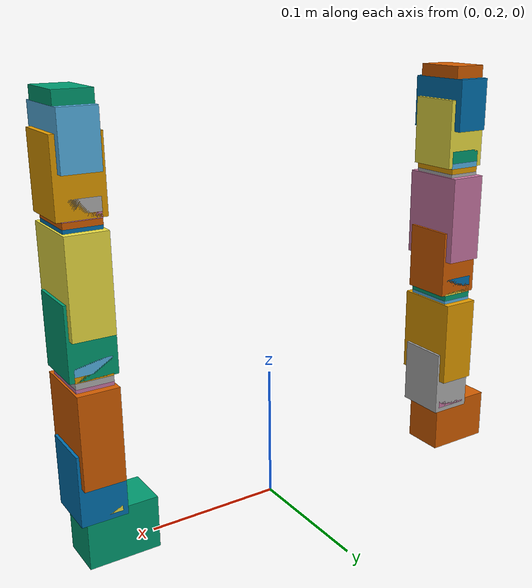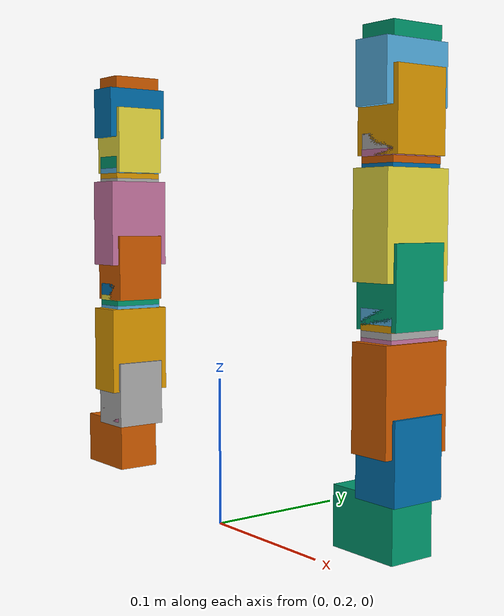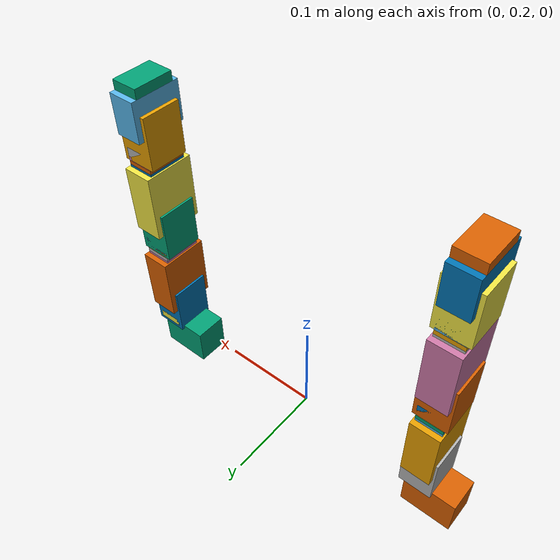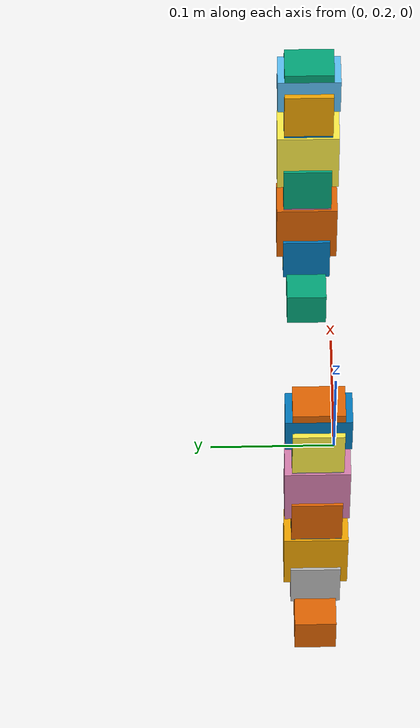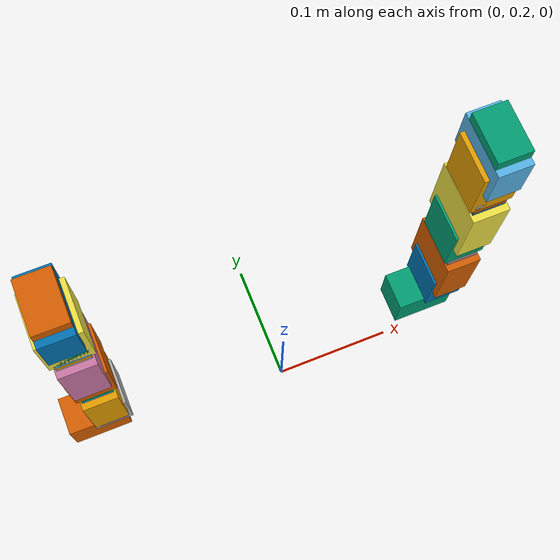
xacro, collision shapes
<?xml version="1.0"?>
<robot name="dual_arm" xmlns:xacro="http://ros.org/wiki/xacro">
<xacro:arg name="mode" default="mock"/>
<xacro:include filename="$(find dual_arm_description)/urdf/arm.xacro"/>
<link name="world"/>
<xacro:phantomx_pincher prefix="arm1_" ros2_control="false"/>
<xacro:phantomx_pincher prefix="arm2_" ros2_control="false"/>
<joint name="arm1_mount" type="fixed"><parent link="world"/><child link="arm1_base_link"/><origin xyz="0.15 0.22 0.03"/></joint>
<joint name="arm2_mount" type="fixed"><parent link="world"/><child link="arm2_base_link"/><origin xyz="-0.15 0.22 0.03"/></joint>
<ros2_control name="DualArmSystem" type="system"><hardware>
<xacro:if value="${'$(arg mode)' == 'sim'}"><plugin>gz_ros2_control/GazeboSimSystem</plugin></xacro:if>
<xacro:unless value="${'$(arg mode)' == 'sim'}"><plugin>mock_components/GenericSystem</plugin></xacro:unless>
</hardware><joint name="arm1_arm_shoulder_pan_joint"><command_interface name="position"/><state_interface name="position"><param name="initial_value">0.0</param></state_interface><state_interface name="velocity"/></joint><joint name="arm1_arm_shoulder_lift_joint"><command_interface name="position"/><state_interface name="position"><param name="initial_value">0.0</param></state_interface><state_interface name="velocity"/></joint><joint name="arm1_arm_elbow_flex_joint"><command_interface name="position"/><state_interface name="position"><param name="initial_value">0.0</param></state_interface><state_interface name="velocity"/></joint><joint name="arm1_arm_wrist_flex_joint"><command_interface name="position"/><state_interface name="position"><param name="initial_value">0.0</param></state_interface><state_interface name="velocity"/></joint><joint name="arm2_arm_shoulder_pan_joint"><command_interface name="position"/><state_interface name="position"><param name="initial_value">0.0</param></state_interface><state_interface name="velocity"/></joint><joint name="arm2_arm_shoulder_lift_joint"><command_interface name="position"/><state_interface name="position"><param name="initial_value">0.0</param></state_interface><state_interface name="velocity"/></joint><joint name="arm2_arm_elbow_flex_joint"><command_interface name="position"/><state_interface name="position"><param name="initial_value">0.0</param></state_interface><state_interface name="velocity"/></joint><joint name="arm2_arm_wrist_flex_joint"><command_interface name="position"/><state_interface name="position"><param name="initial_value">0.0</param></state_interface><state_interface name="velocity"/></joint></ros2_control>
<xacro:if value="${'$(arg mode)' == 'sim'}"><gazebo><plugin filename="libgz_ros2_control-system.so" name="gz_ros2_control::GazeboSimROS2ControlPlugin"><parameters>$(find dual_arm_controllers)/config/controllers.yaml</parameters></plugin></gazebo></xacro:if>
</robot>

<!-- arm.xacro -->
<!-- Xacro for PhantomX Pincher Robot Arm arm -->
<robot xmlns:xacro="http://ros.org/wiki/xacro">

  <!-- Imported elements -->
  <xacro:include filename="$(find dual_arm_description)/urdf/phantomx_pincher_hardware.xacro"/>

  <!-- Properties -->
  <xacro:property name="ax12_height" value="0.032"/>
  <xacro:property name="ax12_width" value="0.038"/>
  <xacro:property name="f2_height" value="0.0265"/>
  <xacro:property name="f4_height" value="0.0525"/>
  <xacro:property name="f10_height" value="0.004"/>
  <xacro:property name="finger_centre_offset_x" value="0.019"/>
  <xacro:property name="finger_centre_offset_y" value="0.0115"/>

  <xacro:property name="joints_velocity_limit" value="${pi/2}"/>
  <xacro:property name="pan_joint_lower_limit" value="${-150*pi/180}"/>
  <xacro:property name="pan_joint_upper_limit" value="${150*pi/180}"/>
  <xacro:property name="shoulder_joint_lower_limit" value="${-120*pi/180}"/>
  <xacro:property name="shoulder_joint_upper_limit" value="${120*pi/180}"/>
  <xacro:property name="elbow_joint_lower_limit" value="${-139*pi/180}"/>
  <xacro:property name="elbow_joint_upper_limit" value="${139*pi/180}"/>
  <xacro:property name="wrist_joint_lower_limit" value="${-98*pi/180}"/>
  <xacro:property name="wrist_joint_upper_limit" value="${103*pi/180}"/>

  <!-- Macro -->
  <xacro:macro name="phantomx_pincher" params="
    prefix
    base_link:=base_link
    collision:=true
    ros2_control:=true
    ros2_control_plugin:=fake
    ros2_control_command_interface:=position
    mimic_finger_joints:=false
    gazebo_preserve_fixed_joint:=false
  ">
    <!-- Base link of the arm, which can be used to attach it to the rest of the world -->
    <link name="${prefix}${base_link}"/>

    <!-- Shoulder Pan -->
    <xacro:dynamixel_ax12_fixed prefix="${prefix}" parent="${base_link}" name="arm_shoulder_pan_servo" joint_origin_xyz="0.0 0.0 0.0" joint_origin_rpy="${pi/2} 0.0 ${pi/2}" collision="${collision}" gazebo_preserve_fixed_joint="${gazebo_preserve_fixed_joint}"/>
    <xacro:bioloid_f3_revolute prefix="${prefix}" parent="arm_shoulder_pan_servo_link" name="arm_shoulder_pan" joint_velocity_limit="${joints_velocity_limit}" joint_lower_limit="${pan_joint_lower_limit}" joint_upper_limit="${pan_joint_upper_limit}" joint_origin_xyz="0 ${ax12_width/2} 0.0" joint_origin_rpy="${-pi/2} ${pi/2} ${pi}" collision="${collision}" gazebo_preserve_fixed_joint="${gazebo_preserve_fixed_joint}"/>

    <!-- Shoulder Lift -->
    <xacro:dynamixel_ax12_fixed prefix="${prefix}" parent="arm_shoulder_pan_link" name="arm_shoulder_lift_servo" joint_origin_xyz="0.0 0.0 ${-ax12_height-f10_height+0.001}" joint_origin_rpy="0.0 ${pi} 0.0" collision="${collision}" gazebo_preserve_fixed_joint="${gazebo_preserve_fixed_joint}"/>
    <xacro:bioloid_f4_revolute prefix="${prefix}" parent="arm_shoulder_lift_servo_link" name="arm_shoulder_lift" joint_velocity_limit="${joints_velocity_limit}" joint_lower_limit="${shoulder_joint_lower_limit}" joint_upper_limit="${shoulder_joint_upper_limit}" joint_origin_xyz="0.0 0.0 0.0" joint_origin_rpy="0.0 0.0 0.0" collision="${collision}" gazebo_preserve_fixed_joint="${gazebo_preserve_fixed_joint}"/>
    <xacro:bioloid_f10_fixed prefix="${prefix}" parent="arm_shoulder_lift_link" name="arm_shoulder_F10_0" joint_origin_xyz="0.0 0.0 ${f4_height+f10_height/2}" joint_origin_rpy="0.0 0.0 0.0" collision="${collision}" gazebo_preserve_fixed_joint="${gazebo_preserve_fixed_joint}"/>
    <xacro:bioloid_f10_fixed prefix="${prefix}" parent="arm_shoulder_F10_0_link" name="arm_shoulder_F10_1" joint_origin_xyz="0.0 0.0 ${f10_height}" joint_origin_rpy="0.0 0.0 0.0" collision="${collision}" gazebo_preserve_fixed_joint="${gazebo_preserve_fixed_joint}"/>
    <xacro:bioloid_f10_fixed prefix="${prefix}" parent="arm_shoulder_F10_1_link" name="arm_shoulder_F10_2" joint_origin_xyz="0.0 0.0 ${f10_height}" joint_origin_rpy="0.0 0.0 0.0" collision="${collision}" gazebo_preserve_fixed_joint="${gazebo_preserve_fixed_joint}"/>
    <xacro:bioloid_f3_fixed prefix="${prefix}" parent="arm_shoulder_F10_2_link" name="arm_shoulder_F3_0" joint_origin_xyz="0.0 0.0 ${f10_height/2}" joint_origin_rpy="0.0 ${pi} 0.0" collision="${collision}" gazebo_preserve_fixed_joint="${gazebo_preserve_fixed_joint}"/>

    <!-- Elbow -->
    <xacro:dynamixel_ax12_fixed prefix="${prefix}" parent="arm_shoulder_F3_0_link" name="arm_elbow_flex_servo" joint_origin_xyz="0.0 0.0 ${-ax12_height-f10_height+0.001}" joint_origin_rpy="0.0 ${pi} 0.0" collision="${collision}" gazebo_preserve_fixed_joint="${gazebo_preserve_fixed_joint}"/>
    <xacro:bioloid_f4_revolute prefix="${prefix}" parent="arm_elbow_flex_servo_link" name="arm_elbow_flex" joint_velocity_limit="${joints_velocity_limit}" joint_lower_limit="${elbow_joint_lower_limit}" joint_upper_limit="${elbow_joint_upper_limit}" joint_origin_xyz="0.0 0.0 0.0" joint_origin_rpy="0.0 0.0 0.0" collision="${collision}" gazebo_preserve_fixed_joint="${gazebo_preserve_fixed_joint}"/>
    <xacro:bioloid_f10_fixed prefix="${prefix}" parent="arm_elbow_flex_link" name="arm_elbow_F10_0" joint_origin_xyz="0.0 0.0 ${f4_height+f10_height/2}" joint_origin_rpy="0.0 0.0 0.0" collision="${collision}" gazebo_preserve_fixed_joint="${gazebo_preserve_fixed_joint}"/>
    <xacro:bioloid_f10_fixed prefix="${prefix}" parent="arm_elbow_F10_0_link" name="arm_elbow_F10_1" joint_origin_xyz="0.0 0.0 ${f10_height}" joint_origin_rpy="0.0 0.0 0.0" collision="${collision}" gazebo_preserve_fixed_joint="${gazebo_preserve_fixed_joint}"/>
    <xacro:bioloid_f10_fixed prefix="${prefix}" parent="arm_elbow_F10_1_link" name="arm_elbow_F10_2" joint_origin_xyz="0.0 0.0 ${f10_height}" joint_origin_rpy="0.0 0.0 0.0" collision="${collision}" gazebo_preserve_fixed_joint="${gazebo_preserve_fixed_joint}"/>
    <xacro:bioloid_f3_fixed prefix="${prefix}" parent="arm_elbow_F10_2_link" name="arm_elbow_F3_0" joint_origin_xyz="0.0 0.0 ${f10_height/2}" joint_origin_rpy="0.0 ${pi} 0.0" collision="${collision}" gazebo_preserve_fixed_joint="${gazebo_preserve_fixed_joint}"/>

    <!-- Wrist -->
    <xacro:dynamixel_ax12_fixed prefix="${prefix}" parent="arm_elbow_F3_0_link" name="arm_wrist_flex_servo" joint_origin_xyz="0.0 0.0 ${-ax12_height-f10_height+0.001}" joint_origin_rpy="0.0 ${pi} 0.0" collision="${collision}" gazebo_preserve_fixed_joint="${gazebo_preserve_fixed_joint}"/>
    <xacro:bioloid_f2_revolute prefix="${prefix}" parent="arm_wrist_flex_servo_link" name="arm_wrist_flex" joint_velocity_limit="${joints_velocity_limit}" joint_lower_limit="${wrist_joint_lower_limit}" joint_upper_limit="${wrist_joint_upper_limit}" joint_origin_xyz="0.0 0.0 0.0" joint_origin_rpy="0.0 0.0 0.0" collision="${collision}" gazebo_preserve_fixed_joint="${gazebo_preserve_fixed_joint}"/>
    <xacro:bioloid_f3_fixed prefix="${prefix}" parent="arm_wrist_flex_link" name="arm_wrist_F3_0" joint_origin_xyz="0.0 0.0 ${f2_height}" joint_origin_rpy="0 ${pi} ${-pi}" collision="${collision}" gazebo_preserve_fixed_joint="${gazebo_preserve_fixed_joint}"/>

    <!-- Reference suction geometry. CAD transform validation required. -->
    <link name="${prefix}tcp">
      <visual><origin xyz="0 0 -0.01"/><geometry><cylinder radius="0.009" length="0.02"/></geometry><material name="cup"><color rgba="0.6 0.7 0.8 0.7"/></material></visual>
      <collision><origin xyz="0 0 -0.01"/><geometry><cylinder radius="0.009" length="0.02"/></geometry></collision>
      <inertial><origin xyz="0 0 -0.01"/><mass value="0.01"/><inertia ixx="0.00000054" iyy="0.00000054" izz="0.0000004" ixy="0" ixz="0" iyz="0"/></inertial>
    </link>
    <joint name="${prefix}tcp_fixed" type="fixed"><parent link="${prefix}arm_wrist_F3_0_link"/><child link="${prefix}tcp"/><origin xyz="0 0 0.02"/></joint>
  </xacro:macro>
</robot>

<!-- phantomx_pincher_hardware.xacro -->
<!-- Macro for (repeated) components of PhantomX Pincher Robot Arm -->
<robot xmlns:xacro="http://ros.org/wiki/xacro">

  <!-- Imported elements -->
  <xacro:include filename="$(find dual_arm_description)/urdf/phantomx_pincher_utils.xacro"/>

  <!-- Macro -->
  <xacro:property name="dynamixel_ax12_fixed_joint_type" value="fixed"/>
  <xacro:property name="dynamixel_ax12_fixed_link_mu" value="1.0"/>
  <xacro:property name="dynamixel_ax12_fixed_link_mesh" value="ax12"/>
  <xacro:property name="dynamixel_ax12_fixed_link_collision_type" value="box"/>
  <xacro:property name="dynamixel_ax12_fixed_link_collision_box_size" value="0.032 0.038 0.05"/>
  <xacro:property name="dynamixel_ax12_fixed_link_mesh_offset_collision_xyz" value="0.0 0.0 -0.0135"/>
  <xacro:macro name="dynamixel_ax12_fixed" params="
    prefix
    name
    parent
    joint_origin_xyz
    joint_origin_rpy
    collision:=true
    gazebo_preserve_fixed_joint:=false
  ">
    <!-- Note: `gazebo_preserve_fixed_joint` cannot be enabled for dynamixel_ax12_fixed because the SDF conversion would fail -->
    <xacro:phantomx_pincher_joint parent="${prefix}${parent}" child="${prefix}${name}_link" joint_name="${prefix}${name}_joint" joint_type="${dynamixel_ax12_fixed_joint_type}" joint_origin_xyz="${joint_origin_xyz}" joint_origin_rpy="${joint_origin_rpy}" gazebo_preserve_fixed_joint="false"/>
    <xacro:phantomx_pincher_link link_name="${prefix}${name}_link" mesh="${dynamixel_ax12_fixed_link_mesh}" collision="${collision}" collision_type="${dynamixel_ax12_fixed_link_collision_type}" collision_box_size="${dynamixel_ax12_fixed_link_collision_box_size}" mesh_offset_collision_xyz="${dynamixel_ax12_fixed_link_mesh_offset_collision_xyz}" mu="${dynamixel_ax12_fixed_link_mu}"/>
  </xacro:macro>

  <!-- Macro -->
  <xacro:property name="bioloid_f3_fixed_joint_type" value="fixed"/>
  <xacro:property name="bioloid_f3_fixed_link_mu" value="1.0"/>
  <xacro:property name="bioloid_f3_fixed_link_mesh" value="f3"/>
  <xacro:property name="bioloid_f3_fixed_link_collision_type" value="box"/>
  <xacro:property name="bioloid_f3_fixed_link_collision_box_size" value="0.025 0.038 0.009"/>
  <xacro:property name="bioloid_f3_fixed_link_mesh_offset_collision_xyz" value="0.0 0.0 -0.0045"/>
  <xacro:macro name="bioloid_f3_fixed" params="
    prefix
    name
    parent
    joint_origin_xyz
    joint_origin_rpy
    collision:=true
    gazebo_preserve_fixed_joint:=false
  ">
    <xacro:phantomx_pincher_joint parent="${prefix}${parent}" child="${prefix}${name}_link" joint_name="${prefix}${name}_joint" joint_type="${bioloid_f3_fixed_joint_type}" joint_origin_xyz="${joint_origin_xyz}" joint_origin_rpy="${joint_origin_rpy}" gazebo_preserve_fixed_joint="${gazebo_preserve_fixed_joint}"/>
    <xacro:phantomx_pincher_link link_name="${prefix}${name}_link" mesh="${bioloid_f3_fixed_link_mesh}" collision="${collision}" collision_type="${bioloid_f3_fixed_link_collision_type}" collision_box_size="${bioloid_f3_fixed_link_collision_box_size}" mesh_offset_collision_xyz="${bioloid_f3_fixed_link_mesh_offset_collision_xyz}" mu="${bioloid_f3_fixed_link_mu}"/>
  </xacro:macro>

  <!-- Macro -->
  <xacro:property name="bioloid_f10_fixed_joint_type" value="fixed"/>
  <xacro:property name="bioloid_f10_fixed_link_mu" value="1.0"/>
  <xacro:property name="bioloid_f10_fixed_link_mesh" value="f10"/>
  <xacro:property name="bioloid_f10_fixed_link_collision_type" value="box"/>
  <xacro:property name="bioloid_f10_fixed_link_collision_box_size" value="0.025 0.038 0.004"/>
  <xacro:property name="bioloid_f10_fixed_link_mesh_offset_collision_xyz" value="0.0 0.0 0.0"/>
  <xacro:macro name="bioloid_f10_fixed" params="
    prefix
    name
    parent
    joint_origin_xyz
    joint_origin_rpy
    collision:=true
    gazebo_preserve_fixed_joint:=false
  ">
    <xacro:phantomx_pincher_joint parent="${prefix}${parent}" child="${prefix}${name}_link" joint_name="${prefix}${name}_joint" joint_type="${bioloid_f10_fixed_joint_type}" joint_origin_xyz="${joint_origin_xyz}" joint_origin_rpy="${joint_origin_rpy}" gazebo_preserve_fixed_joint="${gazebo_preserve_fixed_joint}"/>
    <xacro:phantomx_pincher_link link_name="${prefix}${name}_link" mesh="${bioloid_f10_fixed_link_mesh}" collision="${collision}" collision_type="${bioloid_f10_fixed_link_collision_type}" collision_box_size="${bioloid_f10_fixed_link_collision_box_size}" mesh_offset_collision_xyz="${bioloid_f10_fixed_link_mesh_offset_collision_xyz}" mu="${bioloid_f10_fixed_link_mu}"/>
  </xacro:macro>

  <!-- Macro -->
  <xacro:property name="bioloid_f2_revolute_joint_type" value="revolute"/>
  <xacro:property name="bioloid_f2_revolute_joint_axis_xyz" value="0.0 1.0 0.0"/>
  <xacro:property name="bioloid_f2_revolute_joint_torque_limit" value="30"/>
  <xacro:property name="bioloid_f2_revolute_joint_damping" value="1.4"/>
  <xacro:property name="bioloid_f2_revolute_joint_friction" value="0.02"/>
  <xacro:property name="bioloid_f2_revolute_link_mu" value="1.0"/>
  <xacro:property name="bioloid_f2_revolute_link_mesh" value="f2"/>
  <xacro:property name="bioloid_f2_revolute_link_collision_type" value="box"/>
  <xacro:property name="bioloid_f2_revolute_link_collision_box_size" value="0.025 0.0485 0.0375"/>
  <xacro:property name="bioloid_f2_revolute_link_mesh_offset_collision_xyz" value="0.0 0.0 0.00775"/>
  <xacro:macro name="bioloid_f2_revolute" params="
    prefix
    name
    parent
    joint_origin_xyz
    joint_origin_rpy
    joint_lower_limit
    joint_upper_limit
    joint_velocity_limit
    collision:=true
    gazebo_preserve_fixed_joint:=false
  ">
    <xacro:phantomx_pincher_joint parent="${prefix}${parent}" child="${prefix}${name}_link" joint_name="${prefix}${name}_joint" joint_type="${bioloid_f2_revolute_joint_type}" joint_origin_xyz="${joint_origin_xyz}" joint_origin_rpy="${joint_origin_rpy}" joint_axis_xyz="${bioloid_f2_revolute_joint_axis_xyz}" joint_lower_limit="${joint_lower_limit}" joint_upper_limit="${joint_upper_limit}" joint_velocity_limit="${joint_velocity_limit}" joint_torque_limit="${bioloid_f2_revolute_joint_torque_limit}" joint_damping="${bioloid_f2_revolute_joint_damping}" joint_friction="${bioloid_f2_revolute_joint_friction}" gazebo_preserve_fixed_joint="${gazebo_preserve_fixed_joint}"/>
    <xacro:phantomx_pincher_link link_name="${prefix}${name}_link" mesh="${bioloid_f2_revolute_link_mesh}" collision="${collision}" collision_type="${bioloid_f2_revolute_link_collision_type}" collision_box_size="${bioloid_f2_revolute_link_collision_box_size}" mesh_offset_collision_xyz="${bioloid_f2_revolute_link_mesh_offset_collision_xyz}" mu="${bioloid_f2_revolute_link_mu}"/>
  </xacro:macro>

  <!-- Macro -->
  <xacro:property name="bioloid_f3_revolute_joint_type" value="revolute"/>
  <xacro:property name="bioloid_f3_revolute_joint_axis_xyz" value="0.0 0.0 -1.0"/>
  <xacro:property name="bioloid_f3_revolute_joint_torque_limit" value="30"/>
  <xacro:property name="bioloid_f3_revolute_joint_damping" value="1.4"/>
  <xacro:property name="bioloid_f3_revolute_joint_friction" value="0.02"/>
  <xacro:property name="bioloid_f3_revolute_link_mu" value="1.0"/>
  <xacro:property name="bioloid_f3_revolute_link_mesh" value="f3"/>
  <xacro:property name="bioloid_f3_revolute_link_collision_type" value="box"/>
  <xacro:property name="bioloid_f3_revolute_link_collision_box_size" value="0.025 0.038 0.009"/>
  <xacro:property name="bioloid_f3_revolute_link_mesh_offset_collision_xyz" value="0.0 0.0 -0.0045"/>
  <xacro:macro name="bioloid_f3_revolute" params="
    prefix
    name
    parent
    joint_origin_xyz
    joint_origin_rpy
    joint_lower_limit
    joint_upper_limit
    joint_velocity_limit
    collision:=true
    gazebo_preserve_fixed_joint:=false
  ">
    <xacro:phantomx_pincher_joint parent="${prefix}${parent}" child="${prefix}${name}_link" joint_name="${prefix}${name}_joint" joint_type="${bioloid_f3_revolute_joint_type}" joint_origin_xyz="${joint_origin_xyz}" joint_origin_rpy="${joint_origin_rpy}" joint_axis_xyz="${bioloid_f3_revolute_joint_axis_xyz}" joint_lower_limit="${joint_lower_limit}" joint_upper_limit="${joint_upper_limit}" joint_velocity_limit="${joint_velocity_limit}" joint_torque_limit="${bioloid_f3_revolute_joint_torque_limit}" joint_damping="${bioloid_f3_revolute_joint_damping}" joint_friction="${bioloid_f3_revolute_joint_friction}" gazebo_preserve_fixed_joint="${gazebo_preserve_fixed_joint}"/>
    <xacro:phantomx_pincher_link link_name="${prefix}${name}_link" mesh="${bioloid_f3_revolute_link_mesh}" collision="${collision}" collision_type="${bioloid_f3_revolute_link_collision_type}" collision_box_size="${bioloid_f3_revolute_link_collision_box_size}" mesh_offset_collision_xyz="${bioloid_f3_revolute_link_mesh_offset_collision_xyz}" mu="${bioloid_f3_revolute_link_mu}"/>
  </xacro:macro>

  <!-- Macro -->
  <xacro:property name="bioloid_f4_revolute_joint_type" value="revolute"/>
  <xacro:property name="bioloid_f4_revolute_joint_axis_xyz" value="0.0 1.0 0.0"/>
  <xacro:property name="bioloid_f4_revolute_joint_torque_limit" value="30"/>
  <xacro:property name="bioloid_f4_revolute_joint_damping" value="1.4"/>
  <xacro:property name="bioloid_f4_revolute_joint_friction" value="0.02"/>
  <xacro:property name="bioloid_f4_revolute_link_mu" value="1.0"/>
  <xacro:property name="bioloid_f4_revolute_link_mesh" value="f4"/>
  <xacro:property name="bioloid_f4_revolute_link_collision_type" value="box"/>
  <xacro:property name="bioloid_f4_revolute_link_collision_box_size" value="0.028 0.0485 0.065"/>
  <xacro:property name="bioloid_f4_revolute_link_mesh_offset_collision_xyz" value="0.0 0.0 0.0215"/>
  <xacro:macro name="bioloid_f4_revolute" params="
    prefix
    name
    parent
    joint_origin_xyz
    joint_origin_rpy
    joint_lower_limit
    joint_upper_limit
    joint_velocity_limit
    collision:=true
    gazebo_preserve_fixed_joint:=false
  ">
    <xacro:phantomx_pincher_joint parent="${prefix}${parent}" child="${prefix}${name}_link" joint_name="${prefix}${name}_joint" joint_type="${bioloid_f4_revolute_joint_type}" joint_origin_xyz="${joint_origin_xyz}" joint_origin_rpy="${joint_origin_rpy}" joint_axis_xyz="${bioloid_f4_revolute_joint_axis_xyz}" joint_lower_limit="${joint_lower_limit}" joint_upper_limit="${joint_upper_limit}" joint_velocity_limit="${joint_velocity_limit}" joint_torque_limit="${bioloid_f4_revolute_joint_torque_limit}" joint_damping="${bioloid_f4_revolute_joint_damping}" joint_friction="${bioloid_f4_revolute_joint_friction}" gazebo_preserve_fixed_joint="${gazebo_preserve_fixed_joint}"/>
    <xacro:phantomx_pincher_link link_name="${prefix}${name}_link" mesh="${bioloid_f4_revolute_link_mesh}" collision="${collision}" collision_type="${bioloid_f4_revolute_link_collision_type}" collision_box_size="${bioloid_f4_revolute_link_collision_box_size}" mesh_offset_collision_xyz="${bioloid_f4_revolute_link_mesh_offset_collision_xyz}" mu="${bioloid_f4_revolute_link_mu}"/>
  </xacro:macro>

  <!-- Macro -->
  <xacro:property name="gripper_finger_base_joint_type" value="fixed"/>
  <xacro:property name="gripper_finger_base_link_mu" value="1.0"/>
  <xacro:property name="gripper_finger_base_link_mesh" value="gripper_base"/>
  <xacro:property name="gripper_finger_base_link_collision_type" value="box"/>
  <xacro:property name="gripper_finger_base_link_collision_box_size" value="0.002 0.075 0.040"/>
  <xacro:property name="gripper_finger_base_link_mesh_offset_collision_xyz" value="0.0 0.0 0.0"/>
  <xacro:macro name="gripper_finger_base" params="
    prefix
    name
    parent
    joint_origin_xyz
    joint_origin_rpy
    collision:=true
    gazebo_preserve_fixed_joint:=false
  ">
    <xacro:phantomx_pincher_joint parent="${prefix}${parent}" child="${prefix}${name}_link" joint_name="${prefix}${name}_joint" joint_type="${gripper_finger_base_joint_type}" joint_origin_xyz="${joint_origin_xyz}" joint_origin_rpy="${joint_origin_rpy}" gazebo_preserve_fixed_joint="${gazebo_preserve_fixed_joint}"/>
    <xacro:phantomx_pincher_link link_name="${prefix}${name}_link" mesh="${gripper_finger_base_link_mesh}" collision="${collision}" collision_type="${gripper_finger_base_link_collision_type}" collision_box_size="${gripper_finger_base_link_collision_box_size}" mesh_offset_collision_xyz="${gripper_finger_base_link_mesh_offset_collision_xyz}" mu="${gripper_finger_base_link_mu}"/>
  </xacro:macro>

  <!-- Macro -->
  <xacro:property name="pincher_finger_joint_type" value="prismatic"/>
  <xacro:property name="pincher_finger_joint_axis_xyz" value="1.0 0.0 0.0"/>
  <xacro:property name="pincher_finger_joint_lower_limit" value="0.001"/>
  <xacro:property name="pincher_finger_joint_upper_limit" value="0.0158"/>
  <xacro:property name="pincher_finger_joint_velocity_limit" value="0.01"/>
  <xacro:property name="pincher_finger_joint_torque_limit" value="30"/>
  <xacro:property name="pincher_finger_joint_damping" value="1.8"/>
  <xacro:property name="pincher_finger_joint_friction" value="0.06"/>
  <xacro:property name="pincher_finger_link_mu" value="1.0"/>
  <xacro:property name="pincher_finger_link_mesh" value="finger"/>
  <xacro:property name="pincher_finger_link_collision_type" value="mesh"/>
  <xacro:macro name="pincher_finger" params="
    prefix
    name
    parent
    joint_origin_xyz
    joint_origin_rpy
    collision:=true
    mimic_joint:=none
    gazebo_preserve_fixed_joint:=false
  ">
    <xacro:phantomx_pincher_joint parent="${prefix}${parent}" child="${prefix}${name}_link" joint_name="${prefix}${name}_joint" joint_type="${pincher_finger_joint_type}" joint_origin_xyz="${joint_origin_xyz}" joint_origin_rpy="${joint_origin_rpy}" joint_axis_xyz="${pincher_finger_joint_axis_xyz}" joint_lower_limit="${pincher_finger_joint_lower_limit}" joint_upper_limit="${pincher_finger_joint_upper_limit}" joint_velocity_limit="${pincher_finger_joint_velocity_limit}" joint_torque_limit="${pincher_finger_joint_torque_limit}" joint_damping="${pincher_finger_joint_damping}" joint_friction="${pincher_finger_joint_friction}" gazebo_preserve_fixed_joint="${gazebo_preserve_fixed_joint}" mimic_joint="${mimic_joint}"/>
    <xacro:phantomx_pincher_link link_name="${prefix}${name}_link" mesh="${pincher_finger_link_mesh}" collision="${collision}" collision_type="${pincher_finger_link_collision_type}" mu="${pincher_finger_link_mu}"/>
  </xacro:macro>

  <!-- Macro -->
  <xacro:property name="fake_active_gripper_joint_type" value="revolute"/>
  <xacro:property name="fake_active_gripper_joint_axis_xyz" value="1.0 0.0 0.0"/>
  <xacro:property name="fake_active_gripper_joint_torque_limit" value="30"/>
  <xacro:property name="fake_active_gripper_joint_velocity_limit" value="${3*pi/4}"/>
  <xacro:property name="fake_active_gripper_joint_lower_limit" value="${-149*pi/180}"/>
  <xacro:property name="fake_active_gripper_joint_upper_limit" value="0.0"/>
  <xacro:macro name="fake_active_gripper_joint" params="
    prefix
    name
    parent
    joint_origin_xyz:=${default_vector3}
    joint_origin_rpy:=${default_vector3}
    joint_axis_xyz:=${fake_active_gripper_joint_axis_xyz}
    joint_torque_limit:=${fake_active_gripper_joint_torque_limit}
    joint_velocity_limit:=${fake_active_gripper_joint_velocity_limit}
    joint_lower_limit:=${fake_active_gripper_joint_lower_limit}
    joint_upper_limit:=${fake_active_gripper_joint_upper_limit}
    gazebo_preserve_fixed_joint:=false
  ">
    <xacro:phantomx_pincher_dummy_link link_name="${prefix}${name}_link" gazebo_preserve_fixed_joint="${gazebo_preserve_fixed_joint}"/>
    <joint name="${prefix}${name}_joint" type="${fake_active_gripper_joint_type}">
    <origin xyz="${joint_origin_xyz}" rpy="${joint_origin_rpy}"/>
    <axis xyz="${joint_axis_xyz}"/>
    <limit effort="${joint_torque_limit}" velocity="${joint_velocity_limit}" lower="${joint_lower_limit}" upper="${joint_upper_limit}"/>
    <parent link="${prefix}${parent}"/>
    <child link="${prefix}${name}_link"/>
    </joint>
  </xacro:macro>

</robot>

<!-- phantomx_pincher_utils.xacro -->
<!-- Macros for general boilerplate -->
<robot xmlns:xacro="http://ros.org/wiki/xacro">

  <!-- Imported elements -->
  <xacro:include filename="$(find dual_arm_description)/urdf/phantomx_pincher_inertial.xacro"/>

  <!-- Properties -->
  <xacro:property name="default_string" value=""/>
  <xacro:property name="default_vector3" value="0.0 0.0 0.0"/>

  <!-- Macro -->
  <xacro:macro name="phantomx_pincher_link" params="
    link_name
    mesh
    visual:=true
    collision:=true
    collision_type:=mesh
    collision_box_size:=${default_vector3}
    mesh_offset_visual_xyz:=${default_vector3}
    mesh_offset_visual_rpy:=${default_vector3}
    mesh_offset_collision_xyz:=${default_vector3}
    mesh_offset_collision_rpy:=${default_vector3}
    mesh_offset_inertial_rpy:=${default_vector3}
    mu:=1.0
  ">
    <link name="${link_name}">
      <visual>
        <origin xyz="${mesh_offset_visual_xyz}" rpy="${mesh_offset_visual_rpy}"/>
        <geometry>
          <mesh filename="package://dual_arm_description/meshes/visual/${mesh}.dae"/>
        </geometry>
      </visual>

      <xacro:if value="${collision}">
        <collision>
          <origin xyz="${mesh_offset_collision_xyz}" rpy="${mesh_offset_collision_rpy}"/>
          <geometry>
            <xacro:if value="${collision_type == 'mesh'}">
              <mesh filename="package://dual_arm_description/meshes/collision/${mesh}.stl"/>
            </xacro:if>
            <xacro:if value="${collision_type == 'box'}">
              <box size="${collision_box_size}"/>
            </xacro:if>
          </geometry>
        </collision>
      </xacro:if>

      <xacro:phantomx_pincher_inertial mesh="${mesh}" mesh_offset_rpy="${mesh_offset_inertial_rpy}"/>
    </link>

    <gazebo reference="${link_name}">
      <mu1 value="${mu}"/>
      <mu2 value="${mu}"/>
    </gazebo>
  </xacro:macro>

  <!-- Macro -->
  <xacro:macro name="phantomx_pincher_joint" params="
    parent
    child
    joint_name
    joint_type
    joint_origin_xyz
    joint_origin_rpy
    joint_axis_xyz:=unset
    joint_lower_limit:=unset
    joint_upper_limit:=unset
    joint_velocity_limit:=unset
    joint_torque_limit:=unset
    joint_damping:=0.0
    joint_friction:=0.0
    mimic_joint:=none
    safety_limits:=false
    safety_position_margin:=0.0
    safety_k_position:=0.0
    safety_k_velocity:=0.0
    gazebo_spring_stiffness:=0.0
    gazebo_spring_reference:=0.0
    gazebo_preserve_fixed_joint:=false
  ">
    <!-- Make sure limits are set for non-fixed joints -->
    <xacro:unless value="${joint_type == 'fixed'}">
      <xacro:if value="${joint_axis_xyz == 'unset'}">
        <xacro:ERROR_joint_axis_xyz_undefined/>
      </xacro:if>
      <xacro:if value="${joint_lower_limit == 'unset'}">
        <xacro:ERROR_joint_lower_limit_undefined/>
      </xacro:if>
      <xacro:if value="${joint_upper_limit == 'unset'}">
        <xacro:ERROR_joint_upper_limit_undefined/>
      </xacro:if>
      <xacro:if value="${joint_velocity_limit == 'unset'}">
        <xacro:ERROR_joint_velocity_limit_undefined/>
      </xacro:if>
      <xacro:if value="${joint_torque_limit == 'unset'}">
        <xacro:ERROR_joint_torque_limit_undefined/>
      </xacro:if>
    </xacro:unless>

    <joint name="${joint_name}" type="${joint_type}">
      <parent link="${parent}"/>
      <child link="${child}"/>
      <origin xyz="${joint_origin_xyz}" rpy="${joint_origin_rpy}"/>
      <xacro:unless value="${joint_type == 'fixed'}">
        <axis xyz="${joint_axis_xyz}"/>
        <xacro:if value="${joint_type == 'continuous'}">
          <limit effort="${joint_torque_limit}" velocity="${joint_velocity_limit}"/>
        </xacro:if>
        <xacro:unless value="${joint_type == 'continuous'}">
          <limit lower="${joint_lower_limit}" upper="${joint_upper_limit}" effort="${joint_torque_limit}" velocity="${joint_velocity_limit}"/>
        </xacro:unless>
        <xacro:if value="${safety_limits}">
          <safety_controller soft_lower_limit="${joint_lower_limit+safety_position_margin}" soft_upper_limit="${joint_upper_limit-safety_position_margin}" k_position="${safety_k_position}" k_velocity="${safety_k_velocity}"/>
        </xacro:if>
        <dynamics damping="${joint_damping}" friction="${joint_friction}"/>
      </xacro:unless>
      <xacro:unless value="${mimic_joint == 'none'}">
        <mimic joint="${mimic_joint}"/>
      </xacro:unless>
    </joint>

    <!-- Spring stiffness and reference for non-fixed joint -->
    <xacro:unless value="${joint_type == 'fixed'}">
      <gazebo reference="${joint_name}">
        <springStiffness value="${gazebo_spring_stiffness}"/>
        <springReference value="${gazebo_spring_reference}"/>
      </gazebo>
    </xacro:unless>

    <!-- Preserve fixed joint, if desired -->
    <xacro:if value="${joint_type == 'fixed' and gazebo_preserve_fixed_joint}">
      <gazebo reference="${joint_name}">
        <preserveFixedJoint>true</preserveFixedJoint>
        <disableFixedJointLumping>true</disableFixedJointLumping>
      </gazebo>
    </xacro:if>
  </xacro:macro>

  <!-- Macro -->
  <xacro:macro name="phantomx_pincher_virtual_link" params="
    parent
    link_name
    joint_origin_xyz
    joint_origin_rpy
    gazebo_preserve_fixed_joint:=true
  ">
    <xacro:phantomx_pincher_dummy_link link_name="${link_name}" gazebo_preserve_fixed_joint="${gazebo_preserve_fixed_joint}"/>

    <joint name="${link_name}_virtual_joint" type="fixed">
      <parent link="${parent}"/>
      <child link="${link_name}"/>
      <origin xyz="${joint_origin_xyz}" rpy="${joint_origin_rpy}"/>
    </joint>
  </xacro:macro>

  <!-- Macro -->
  <xacro:macro name="phantomx_pincher_dummy_link" params="
    link_name
    gazebo_preserve_fixed_joint:=true
  ">
    <link name="${link_name}">
      <xacro:if value="${gazebo_preserve_fixed_joint}">
        <inertial>
          <mass value="1e-5"/>
          <inertia ixx="1e-35" iyy="1e-35" izz="1e-35" ixy="0.0" ixz="0.0" iyz="0.0"/>
        </inertial>
      </xacro:if>
    </link>

    <!-- Preserve fixed joint, if desired -->
    <xacro:if value="${gazebo_preserve_fixed_joint}">
      <gazebo reference="${link_name}_virtual_joint">
        <preserveFixedJoint>true</preserveFixedJoint>
        <disableFixedJointLumping>true</disableFixedJointLumping>
      </gazebo>
    </xacro:if>
  </xacro:macro>
</robot>
